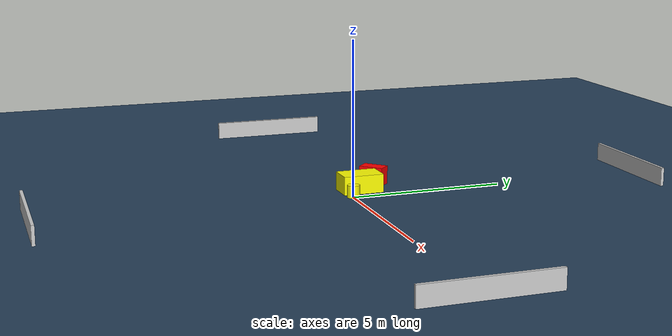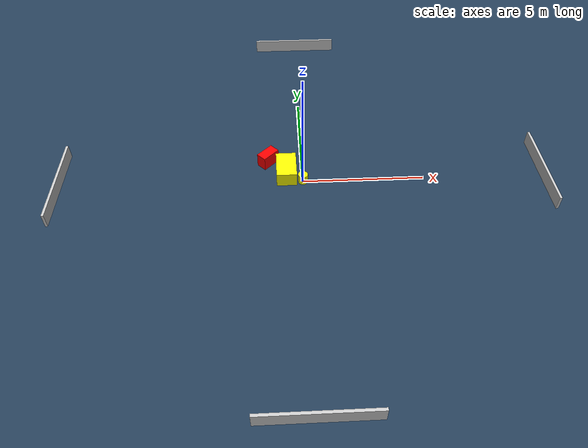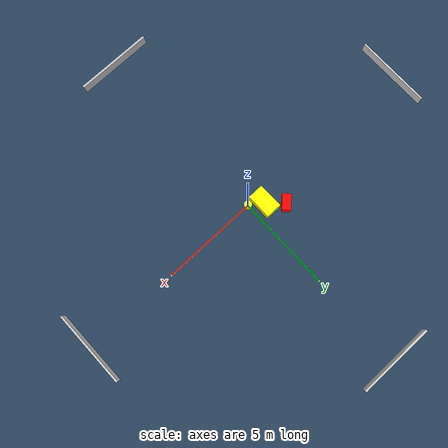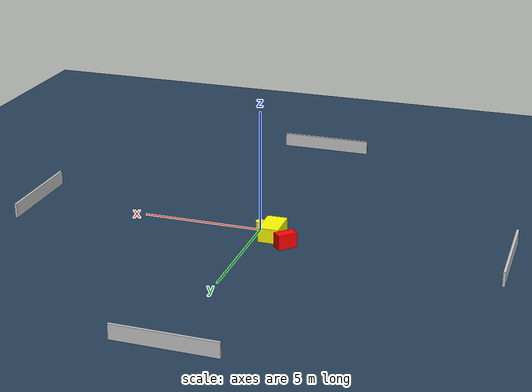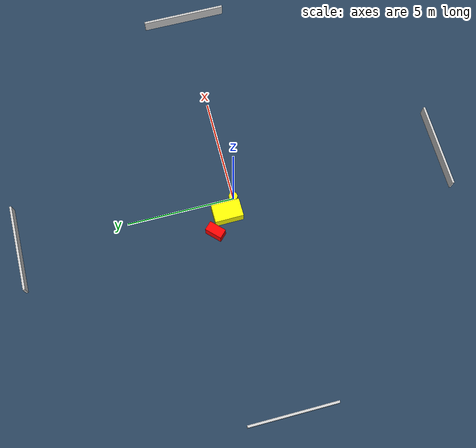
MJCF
<?xml version="1.0" ?>
<mujoco model="generated_environment">
  <option timestep="0.01" integrator="RK4" cone="elliptic"/>
  <default>
    <geom density="1"/>
  </default>
  <asset>
    <texture builtin="gradient" height="3072" name="skybox" rgb1="0.3 0.5 0.7" rgb2="0 0 0" type="skybox" width="512"/>
    <texture builtin="checker" height="300" name="groundplane" rgb1="0.2 0.3 0.4" rgb2="0.1 0.2 0.3" type="2d" width="300"/>
    <material name="groundplane" reflectance="0.2" texrepeat="5 5" texture="groundplane"/>
  </asset>
  <worldbody>
    <light dir="0 0 -1" directional="true" pos="0 0 1.5"/>
    <geom condim="3" friction="0.5 0.005 0.001" material="groundplane" name="floor" pos="0 0 0" size="0 0 0.05" type="plane"/>
    <body name="walls">
      <geom name="wall_1" condim="4" pos="-10.0 0.0 0.3" rgba="0.800000011920929 0.800000011920929 0.800000011920929 1.0" size="0.05 2.0 0.3" type="box"/>
      <geom name="wall_2" condim="4" pos="10.0 0.0 0.3" rgba="0.800000011920929 0.800000011920929 0.800000011920929 1.0" size="0.05 2.0 0.3" type="box"/>
      <geom name="wall_3" condim="4" pos="0.0 -10.0 0.3" rgba="0.800000011920929 0.800000011920929 0.800000011920929 1.0" size="2.0 0.05 0.3" type="box"/>
      <geom name="wall_4" condim="4" pos="0.0 10.0 0.3" rgba="0.800000011920929 0.800000011920929 0.800000011920929 1.0" size="2.0 0.05 0.3" type="box"/>
    </body>
    <body name="robot">
      <joint name="joint_x" type="slide" pos="0 0 0" axis="1 0 0"/>
      <joint name="joint_y" type="slide" pos="0 0 0" axis="0 1 0"/>
      <geom name="robot" type="cylinder" pos="0.0 0.0 0.2" size="0.2 0.2 0.0" mass="5.0" friction="1.0 0.005 0.0001" condim="4" rgba="1.0 1.0 0.0 1.0"/>
    </body>
    <body name="obstacle_1_movable">
      <geom name="obstacle_1_movable" condim="4" pos="-0.6753692034018828 0.45231134500025494 0.3" euler="0 0 180.53966390873038" friction="0.0 0.005 0.001" rgba="1.0 1.0 0.0 1.0" size="0.4177512496908219 0.6622431210094353 0.3" type="box" mass="0.1"/>
      <joint type="free"/>
    </body>
    <body name="obstacle_2_static">
      <geom name="obstacle_2_static" condim="4" pos="-1.4338508709035547 1.1953040224120455 0.3" euler="0 0 224.672438475837" friction="0.0 0.005 0.001" rgba="1.0 0.0 0.0 1.0" size="0.4054569064148068 0.22345231235449484 0.3" type="box"/>
    </body>
  </worldbody>
  <actuator>
    <motor name="actuator_x" joint="joint_x" gear="1" ctrlrange="-1 1"/>
    <motor name="actuator_y" joint="joint_y" gear="1" ctrlrange="-1 1"/>
  </actuator>
</mujoco>
